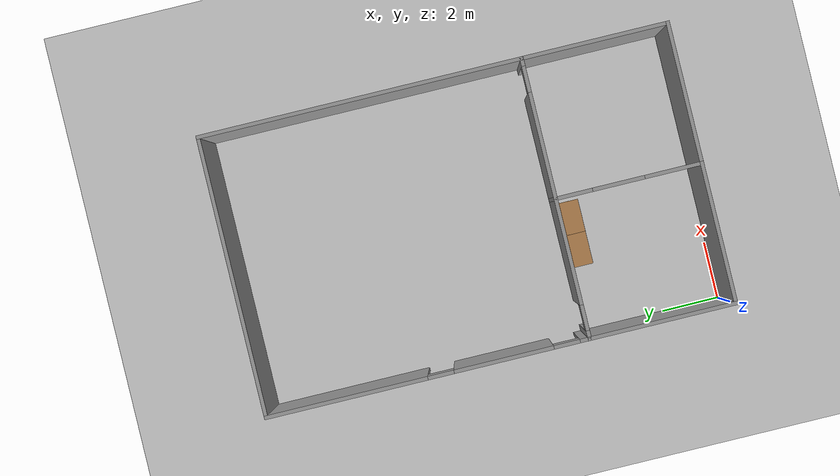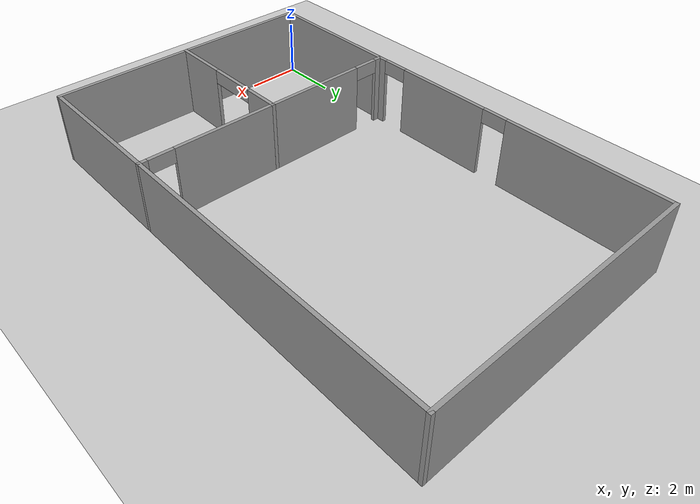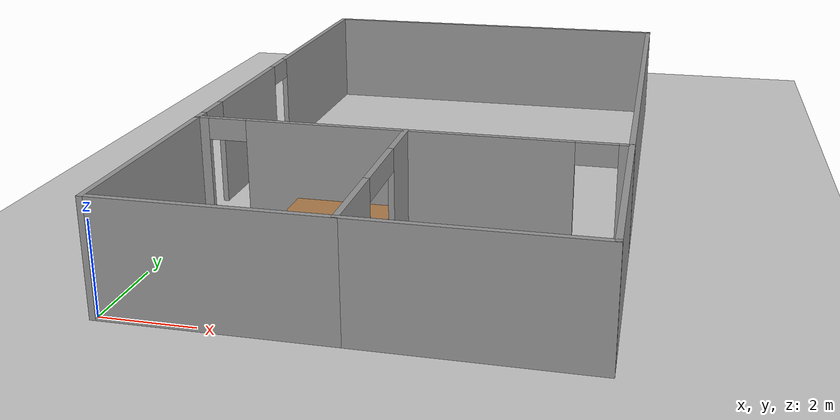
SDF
<sdf version="1.7">
 <world name="default">
  <model name="ground_plane">
   <static>1</static>
   <link name="link">
    <collision name="collision">
     <geometry><plane><normal>0 0 1</normal><size>100 100</size></plane></geometry>
     <surface>
      <contact><collide_bitmask>65535</collide_bitmask></contact>
      <friction><ode><mu>100</mu><mu2>50</mu2></ode></friction>
     </surface>
    </collision>
    <visual name="visual">
     <cast_shadows>0</cast_shadows>
     <geometry><plane><normal>0 0 1</normal><size>100 100</size></plane></geometry>
     <material>
      <script><uri>file://media/materials/scripts/gazebo.material</uri><name>Gazebo/Grey</name></script>
     </material>
    </visual>
   </link>
  </model>
  <model name="table_mod_clone_0_clone">
   <link name="link">
    <inertial>
     <mass>1</mass>
     <inertia><ixx>1</ixx><ixy>0</ixy><ixz>0</ixz><iyy>1</iyy><iyz>0</iyz><izz>1</izz></inertia>
    </inertial>
    <visual name="visual1">
     <pose>0 0 0.87 0 -0 0</pose>
     <geometry><box><size>1.15 0.8 0.03</size></box></geometry>
     <material>
      <script><uri>file://media/materials/scripts/gazebo.material</uri><name>Gazebo/Wood</name></script>
      <shader type="pixel"><normal_map>__default__</normal_map></shader>
      <ambient>1 1 1 1</ambient>
      <diffuse>1 1 1 1</diffuse>
      <specular>0.2 0.2 0.2 1</specular>
      <emissive>0 0 0 1</emissive>
     </material>
    </visual>
    <visual name="back_right_leg">
     <pose>-0.55 -0.38 0.5 0 -0 0</pose>
     <geometry><cylinder><radius>0.02</radius><length>0.75</length></cylinder></geometry>
     <material>
      <script><uri>file://media/materials/scripts/gazebo.material</uri><name>Gazebo/Grey</name></script>
      <shader type="pixel"><normal_map>__default__</normal_map></shader>
      <ambient>0.3 0.3 0.3 1</ambient>
      <diffuse>0.7 0.7 0.7 1</diffuse>
      <specular>0.01 0.01 0.01 1</specular>
      <emissive>0 0 0 1</emissive>
     </material>
    </visual>
    <visual name="front_right_leg">
     <pose>0.55 -0.38 0.5 0 -0 0</pose>
     <geometry><cylinder><radius>0.02</radius><length>0.75</length></cylinder></geometry>
     <material>
      <script><uri>file://media/materials/scripts/gazebo.material</uri><name>Gazebo/Grey</name></script>
      <shader type="pixel"><normal_map>__default__</normal_map></shader>
      <ambient>0.3 0.3 0.3 1</ambient>
      <diffuse>0.7 0.7 0.7 1</diffuse>
      <specular>0.01 0.01 0.01 1</specular>
      <emissive>0 0 0 1</emissive>
     </material>
    </visual>
    <visual name="back_left_leg">
     <pose>-0.55 0.38 0.5 0 -0 0</pose>
     <geometry><cylinder><radius>0.02</radius><length>0.75</length></cylinder></geometry>
     <material>
      <script><uri>file://media/materials/scripts/gazebo.material</uri><name>Gazebo/Grey</name></script>
      <shader type="pixel"><normal_map>__default__</normal_map></shader>
      <ambient>0.3 0.3 0.3 1</ambient>
      <diffuse>0.7 0.7 0.7 1</diffuse>
      <specular>0.01 0.01 0.01 1</specular>
      <emissive>0 0 0 1</emissive>
     </material>
    </visual>
    <visual name="front_left_leg">
     <pose>0.55 0.38 0.5 0 -0 0</pose>
     <geometry><cylinder><radius>0.02</radius><length>0.75</length></cylinder></geometry>
     <material>
      <script><uri>file://media/materials/scripts/gazebo.material</uri><name>Gazebo/Grey</name></script>
      <shader type="pixel"><normal_map>__default__</normal_map></shader>
      <ambient>0.3 0.3 0.3 1</ambient>
      <diffuse>0.7 0.7 0.7 1</diffuse>
      <specular>0.01 0.01 0.01 1</specular>
      <emissive>0 0 0 1</emissive>
     </material>
    </visual>
    <collision name="surface">
     <pose>0 0 0.87 0 -0 0</pose>
     <geometry><box><size>1.15 0.8 0.03</size></box></geometry>
     <surface>
      <friction>
       <ode><mu>0.6</mu><mu2>0.6</mu2><fdir1>0 0 0</fdir1><slip1>0</slip1><slip2>0</slip2></ode>
       <torsional>
        <coefficient>1</coefficient>
        <patch_radius>0</patch_radius>
        <surface_radius>0</surface_radius>
        <use_patch_radius>1</use_patch_radius>
        <ode><slip>0</slip></ode>
       </torsional>
      </friction>
      <bounce><restitution_coefficient>0</restitution_coefficient><threshold>1e+06</threshold></bounce>
      <contact>
       <collide_without_contact>0</collide_without_contact>
       <collide_without_contact_bitmask>1</collide_without_contact_bitmask>
       <collide_bitmask>1</collide_bitmask>
       <ode>
        <soft_cfm>0</soft_cfm>
        <soft_erp>0.2</soft_erp>
        <kp>1e+13</kp>
        <kd>1</kd>
        <max_vel>0.01</max_vel>
        <min_depth>0</min_depth>
       </ode>
       <bullet>
        <split_impulse>1</split_impulse>
        <split_impulse_penetration_threshold>-0.01</split_impulse_penetration_threshold>
        <soft_cfm>0</soft_cfm>
        <soft_erp>0.2</soft_erp>
        <kp>1e+13</kp>
        <kd>1</kd>
       </bullet>
      </contact>
     </surface>
    </collision>
    <collision name="back_right_leg">
     <pose>-0.55 -0.38 0.5 0 -0 0</pose>
     <geometry><cylinder><radius>0.02</radius><length>0.75</length></cylinder></geometry>
     <surface>
      <friction>
       <ode><mu>1</mu><mu2>1</mu2><fdir1>0 0 0</fdir1><slip1>0</slip1><slip2>0</slip2></ode>
       <torsional>
        <coefficient>1</coefficient>
        <patch_radius>0</patch_radius>
        <surface_radius>0</surface_radius>
        <use_patch_radius>1</use_patch_radius>
        <ode><slip>0</slip></ode>
       </torsional>
      </friction>
      <bounce><restitution_coefficient>0</restitution_coefficient><threshold>1e+06</threshold></bounce>
      <contact>
       <collide_without_contact>0</collide_without_contact>
       <collide_without_contact_bitmask>1</collide_without_contact_bitmask>
       <collide_bitmask>1</collide_bitmask>
       <ode>
        <soft_cfm>0</soft_cfm>
        <soft_erp>0.2</soft_erp>
        <kp>1e+13</kp>
        <kd>1</kd>
        <max_vel>0.01</max_vel>
        <min_depth>0</min_depth>
       </ode>
       <bullet>
        <split_impulse>1</split_impulse>
        <split_impulse_penetration_threshold>-0.01</split_impulse_penetration_threshold>
        <soft_cfm>0</soft_cfm>
        <soft_erp>0.2</soft_erp>
        <kp>1e+13</kp>
        <kd>1</kd>
       </bullet>
      </contact>
     </surface>
    </collision>
    <collision name="back_left_leg">
     <pose>-0.55 0.38 0.5 0 -0 0</pose>
     <geometry><cylinder><radius>0.02</radius><length>0.75</length></cylinder></geometry>
     <surface>
      <friction>
       <ode><mu>1</mu><mu2>1</mu2><fdir1>0 0 0</fdir1><slip1>0</slip1><slip2>0</slip2></ode>
       <torsional>
        <coefficient>1</coefficient>
        <patch_radius>0</patch_radius>
        <surface_radius>0</surface_radius>
        <use_patch_radius>1</use_patch_radius>
        <ode><slip>0</slip></ode>
       </torsional>
      </friction>
      <bounce><restitution_coefficient>0</restitution_coefficient><threshold>1e+06</threshold></bounce>
      <contact>
       <collide_without_contact>0</collide_without_contact>
       <collide_without_contact_bitmask>1</collide_without_contact_bitmask>
       <collide_bitmask>1</collide_bitmask>
       <ode>
        <soft_cfm>0</soft_cfm>
        <soft_erp>0.2</soft_erp>
        <kp>1e+13</kp>
        <kd>1</kd>
        <max_vel>0.01</max_vel>
        <min_depth>0</min_depth>
       </ode>
       <bullet>
        <split_impulse>1</split_impulse>
        <split_impulse_penetration_threshold>-0.01</split_impulse_penetration_threshold>
        <soft_cfm>0</soft_cfm>
        <soft_erp>0.2</soft_erp>
        <kp>1e+13</kp>
        <kd>1</kd>
       </bullet>
      </contact>
     </surface>
    </collision>
    <collision name="front_left_leg">
     <pose>0.55 0.38 0.5 0 -0 0</pose>
     <geometry><cylinder><radius>0.02</radius><length>0.75</length></cylinder></geometry>
     <surface>
      <friction>
       <ode><mu>1</mu><mu2>1</mu2><fdir1>0 0 0</fdir1><slip1>0</slip1><slip2>0</slip2></ode>
       <torsional>
        <coefficient>1</coefficient>
        <patch_radius>0</patch_radius>
        <surface_radius>0</surface_radius>
        <use_patch_radius>1</use_patch_radius>
        <ode><slip>0</slip></ode>
       </torsional>
      </friction>
      <bounce><restitution_coefficient>0</restitution_coefficient><threshold>1e+06</threshold></bounce>
      <contact>
       <collide_without_contact>0</collide_without_contact>
       <collide_without_contact_bitmask>1</collide_without_contact_bitmask>
       <collide_bitmask>1</collide_bitmask>
       <ode>
        <soft_cfm>0</soft_cfm>
        <soft_erp>0.2</soft_erp>
        <kp>1e+13</kp>
        <kd>1</kd>
        <max_vel>0.01</max_vel>
        <min_depth>0</min_depth>
       </ode>
       <bullet>
        <split_impulse>1</split_impulse>
        <split_impulse_penetration_threshold>-0.01</split_impulse_penetration_threshold>
        <soft_cfm>0</soft_cfm>
        <soft_erp>0.2</soft_erp>
        <kp>1e+13</kp>
        <kd>1</kd>
       </bullet>
      </contact>
     </surface>
    </collision>
    <collision name="front_right_leg">
     <pose>0.55 -0.38 0.5 0 -0 0</pose>
     <geometry><cylinder><radius>0.02</radius><length>0.75</length></cylinder></geometry>
     <surface>
      <friction>
       <ode><mu>1</mu><mu2>1</mu2><fdir1>0 0 0</fdir1><slip1>0</slip1><slip2>0</slip2></ode>
       <torsional>
        <coefficient>1</coefficient>
        <patch_radius>0</patch_radius>
        <surface_radius>0</surface_radius>
        <use_patch_radius>1</use_patch_radius>
        <ode><slip>0</slip></ode>
       </torsional>
      </friction>
      <bounce><restitution_coefficient>0</restitution_coefficient><threshold>1e+06</threshold></bounce>
      <contact>
       <collide_without_contact>0</collide_without_contact>
       <collide_without_contact_bitmask>1</collide_without_contact_bitmask>
       <collide_bitmask>1</collide_bitmask>
       <ode>
        <soft_cfm>0</soft_cfm>
        <soft_erp>0.2</soft_erp>
        <kp>1e+13</kp>
        <kd>1</kd>
        <max_vel>0.01</max_vel>
        <min_depth>0</min_depth>
       </ode>
       <bullet>
        <split_impulse>1</split_impulse>
        <split_impulse_penetration_threshold>-0.01</split_impulse_penetration_threshold>
        <soft_cfm>0</soft_cfm>
        <soft_erp>0.2</soft_erp>
        <kp>1e+13</kp>
        <kd>1</kd>
       </bullet>
      </contact>
     </surface>
    </collision>
   </link>
   <static>1</static>
   <pose>2.86118 4.46763 -0.134214 0 0 -4e-06</pose>
  </model>
  <model name="table_mod_clone_0_clone_0">
   <link name="link">
    <inertial>
     <mass>1</mass>
     <inertia><ixx>1</ixx><ixy>0</ixy><ixz>0</ixz><iyy>1</iyy><iyz>0</iyz><izz>1</izz></inertia>
    </inertial>
    <visual name="visual1">
     <pose>0 0 0.87 0 -0 0</pose>
     <geometry><box><size>1.15 0.8 0.03</size></box></geometry>
     <material>
      <script><uri>file://media/materials/scripts/gazebo.material</uri><name>Gazebo/Wood</name></script>
      <shader type="pixel"><normal_map>__default__</normal_map></shader>
      <ambient>1 1 1 1</ambient>
      <diffuse>1 1 1 1</diffuse>
      <specular>0.2 0.2 0.2 1</specular>
      <emissive>0 0 0 1</emissive>
     </material>
    </visual>
    <visual name="back_right_leg">
     <pose>-0.55 -0.38 0.5 0 -0 0</pose>
     <geometry><cylinder><radius>0.02</radius><length>0.75</length></cylinder></geometry>
     <material>
      <script><uri>file://media/materials/scripts/gazebo.material</uri><name>Gazebo/Grey</name></script>
      <shader type="pixel"><normal_map>__default__</normal_map></shader>
      <ambient>0.3 0.3 0.3 1</ambient>
      <diffuse>0.7 0.7 0.7 1</diffuse>
      <specular>0.01 0.01 0.01 1</specular>
      <emissive>0 0 0 1</emissive>
     </material>
    </visual>
    <visual name="front_right_leg">
     <pose>0.55 -0.38 0.5 0 -0 0</pose>
     <geometry><cylinder><radius>0.02</radius><length>0.75</length></cylinder></geometry>
     <material>
      <script><uri>file://media/materials/scripts/gazebo.material</uri><name>Gazebo/Grey</name></script>
      <shader type="pixel"><normal_map>__default__</normal_map></shader>
      <ambient>0.3 0.3 0.3 1</ambient>
      <diffuse>0.7 0.7 0.7 1</diffuse>
      <specular>0.01 0.01 0.01 1</specular>
      <emissive>0 0 0 1</emissive>
     </material>
    </visual>
    <visual name="back_left_leg">
     <pose>-0.55 0.38 0.5 0 -0 0</pose>
     <geometry><cylinder><radius>0.02</radius><length>0.75</length></cylinder></geometry>
     <material>
      <script><uri>file://media/materials/scripts/gazebo.material</uri><name>Gazebo/Grey</name></script>
      <shader type="pixel"><normal_map>__default__</normal_map></shader>
      <ambient>0.3 0.3 0.3 1</ambient>
      <diffuse>0.7 0.7 0.7 1</diffuse>
      <specular>0.01 0.01 0.01 1</specular>
      <emissive>0 0 0 1</emissive>
     </material>
    </visual>
    <visual name="front_left_leg">
     <pose>0.55 0.38 0.5 0 -0 0</pose>
     <geometry><cylinder><radius>0.02</radius><length>0.75</length></cylinder></geometry>
     <material>
      <script><uri>file://media/materials/scripts/gazebo.material</uri><name>Gazebo/Grey</name></script>
      <shader type="pixel"><normal_map>__default__</normal_map></shader>
      <ambient>0.3 0.3 0.3 1</ambient>
      <diffuse>0.7 0.7 0.7 1</diffuse>
      <specular>0.01 0.01 0.01 1</specular>
      <emissive>0 0 0 1</emissive>
     </material>
    </visual>
    <collision name="surface">
     <pose>0 0 0.87 0 -0 0</pose>
     <geometry><box><size>1.15 0.8 0.03</size></box></geometry>
     <surface>
      <friction>
       <ode><mu>0.6</mu><mu2>0.6</mu2><fdir1>0 0 0</fdir1><slip1>0</slip1><slip2>0</slip2></ode>
       <torsional>
        <coefficient>1</coefficient>
        <patch_radius>0</patch_radius>
        <surface_radius>0</surface_radius>
        <use_patch_radius>1</use_patch_radius>
        <ode><slip>0</slip></ode>
       </torsional>
      </friction>
      <bounce><restitution_coefficient>0</restitution_coefficient><threshold>1e+06</threshold></bounce>
      <contact>
       <collide_without_contact>0</collide_without_contact>
       <collide_without_contact_bitmask>1</collide_without_contact_bitmask>
       <collide_bitmask>1</collide_bitmask>
       <ode>
        <soft_cfm>0</soft_cfm>
        <soft_erp>0.2</soft_erp>
        <kp>1e+13</kp>
        <kd>1</kd>
        <max_vel>0.01</max_vel>
        <min_depth>0</min_depth>
       </ode>
       <bullet>
        <split_impulse>1</split_impulse>
        <split_impulse_penetration_threshold>-0.01</split_impulse_penetration_threshold>
        <soft_cfm>0</soft_cfm>
        <soft_erp>0.2</soft_erp>
        <kp>1e+13</kp>
        <kd>1</kd>
       </bullet>
      </contact>
     </surface>
    </collision>
    <collision name="back_right_leg">
     <pose>-0.55 -0.38 0.5 0 -0 0</pose>
     <geometry><cylinder><radius>0.02</radius><length>0.75</length></cylinder></geometry>
     <surface>
      <friction>
       <ode><mu>1</mu><mu2>1</mu2><fdir1>0 0 0</fdir1><slip1>0</slip1><slip2>0</slip2></ode>
       <torsional>
        <coefficient>1</coefficient>
        <patch_radius>0</patch_radius>
        <surface_radius>0</surface_radius>
        <use_patch_radius>1</use_patch_radius>
        <ode><slip>0</slip></ode>
       </torsional>
      </friction>
      <bounce><restitution_coefficient>0</restitution_coefficient><threshold>1e+06</threshold></bounce>
      <contact>
       <collide_without_contact>0</collide_without_contact>
       <collide_without_contact_bitmask>1</collide_without_contact_bitmask>
       <collide_bitmask>1</collide_bitmask>
       <ode>
        <soft_cfm>0</soft_cfm>
        <soft_erp>0.2</soft_erp>
        <kp>1e+13</kp>
        <kd>1</kd>
        <max_vel>0.01</max_vel>
        <min_depth>0</min_depth>
       </ode>
       <bullet>
        <split_impulse>1</split_impulse>
        <split_impulse_penetration_threshold>-0.01</split_impulse_penetration_threshold>
        <soft_cfm>0</soft_cfm>
        <soft_erp>0.2</soft_erp>
        <kp>1e+13</kp>
        <kd>1</kd>
       </bullet>
      </contact>
     </surface>
    </collision>
    <collision name="back_left_leg">
     <pose>-0.55 0.38 0.5 0 -0 0</pose>
     <geometry><cylinder><radius>0.02</radius><length>0.75</length></cylinder></geometry>
     <surface>
      <friction>
       <ode><mu>1</mu><mu2>1</mu2><fdir1>0 0 0</fdir1><slip1>0</slip1><slip2>0</slip2></ode>
       <torsional>
        <coefficient>1</coefficient>
        <patch_radius>0</patch_radius>
        <surface_radius>0</surface_radius>
        <use_patch_radius>1</use_patch_radius>
        <ode><slip>0</slip></ode>
       </torsional>
      </friction>
      <bounce><restitution_coefficient>0</restitution_coefficient><threshold>1e+06</threshold></bounce>
      <contact>
       <collide_without_contact>0</collide_without_contact>
       <collide_without_contact_bitmask>1</collide_without_contact_bitmask>
       <collide_bitmask>1</collide_bitmask>
       <ode>
        <soft_cfm>0</soft_cfm>
        <soft_erp>0.2</soft_erp>
        <kp>1e+13</kp>
        <kd>1</kd>
        <max_vel>0.01</max_vel>
        <min_depth>0</min_depth>
       </ode>
       <bullet>
        <split_impulse>1</split_impulse>
        <split_impulse_penetration_threshold>-0.01</split_impulse_penetration_threshold>
        <soft_cfm>0</soft_cfm>
        <soft_erp>0.2</soft_erp>
        <kp>1e+13</kp>
        <kd>1</kd>
       </bullet>
      </contact>
     </surface>
    </collision>
    <collision name="front_left_leg">
     <pose>0.55 0.38 0.5 0 -0 0</pose>
     <geometry><cylinder><radius>0.02</radius><length>0.75</length></cylinder></geometry>
     <surface>
      <friction>
       <ode><mu>1</mu><mu2>1</mu2><fdir1>0 0 0</fdir1><slip1>0</slip1><slip2>0</slip2></ode>
       <torsional>
        <coefficient>1</coefficient>
        <patch_radius>0</patch_radius>
        <surface_radius>0</surface_radius>
        <use_patch_radius>1</use_patch_radius>
        <ode><slip>0</slip></ode>
       </torsional>
      </friction>
      <bounce><restitution_coefficient>0</restitution_coefficient><threshold>1e+06</threshold></bounce>
      <contact>
       <collide_without_contact>0</collide_without_contact>
       <collide_without_contact_bitmask>1</collide_without_contact_bitmask>
       <collide_bitmask>1</collide_bitmask>
       <ode>
        <soft_cfm>0</soft_cfm>
        <soft_erp>0.2</soft_erp>
        <kp>1e+13</kp>
        <kd>1</kd>
        <max_vel>0.01</max_vel>
        <min_depth>0</min_depth>
       </ode>
       <bullet>
        <split_impulse>1</split_impulse>
        <split_impulse_penetration_threshold>-0.01</split_impulse_penetration_threshold>
        <soft_cfm>0</soft_cfm>
        <soft_erp>0.2</soft_erp>
        <kp>1e+13</kp>
        <kd>1</kd>
       </bullet>
      </contact>
     </surface>
    </collision>
    <collision name="front_right_leg">
     <pose>0.55 -0.38 0.5 0 -0 0</pose>
     <geometry><cylinder><radius>0.02</radius><length>0.75</length></cylinder></geometry>
     <surface>
      <friction>
       <ode><mu>1</mu><mu2>1</mu2><fdir1>0 0 0</fdir1><slip1>0</slip1><slip2>0</slip2></ode>
       <torsional>
        <coefficient>1</coefficient>
        <patch_radius>0</patch_radius>
        <surface_radius>0</surface_radius>
        <use_patch_radius>1</use_patch_radius>
        <ode><slip>0</slip></ode>
       </torsional>
      </friction>
      <bounce><restitution_coefficient>0</restitution_coefficient><threshold>1e+06</threshold></bounce>
      <contact>
       <collide_without_contact>0</collide_without_contact>
       <collide_without_contact_bitmask>1</collide_without_contact_bitmask>
       <collide_bitmask>1</collide_bitmask>
       <ode>
        <soft_cfm>0</soft_cfm>
        <soft_erp>0.2</soft_erp>
        <kp>1e+13</kp>
        <kd>1</kd>
        <max_vel>0.01</max_vel>
        <min_depth>0</min_depth>
       </ode>
       <bullet>
        <split_impulse>1</split_impulse>
        <split_impulse_penetration_threshold>-0.01</split_impulse_penetration_threshold>
        <soft_cfm>0</soft_cfm>
        <soft_erp>0.2</soft_erp>
        <kp>1e+13</kp>
        <kd>1</kd>
       </bullet>
      </contact>
     </surface>
    </collision>
   </link>
   <static>1</static>
   <pose>4.01232 4.46455 -0.134214 0 0 -4e-06</pose>
  </model>
  <model name="walls_mod">
   <pose>4.77963 7.98912 0 0 -0 1.5708</pose>
   <link name="Wall_29">
    <pose>2.515 4.81752 0 0 -0 0</pose>
    <visual name="Wall_29_Visual_0">
     <pose>-5.43162 0 1.25 0 -0 0</pose>
     <geometry><box><size>0.396755 0.13 2.5</size></box></geometry>
     <material>
      <script><uri>file://media/materials/scripts/gazebo.material</uri><name>Gazebo/Grey</name></script>
      <ambient>1 1 1 1</ambient>
     </material>
     <meta><layer>0</layer></meta>
    </visual>
    <collision name="Wall_29_Collision_0">
     <geometry><box><size>0.396755 0.13 2.5</size></box></geometry>
     <pose>-5.43162 0 1.25 0 -0 0</pose>
    </collision>
    <visual name="Wall_29_Visual_1">
     <pose>-2.61601 0 1.25 0 -0 0</pose>
     <geometry><box><size>3.43447 0.13 2.5</size></box></geometry>
     <material>
      <script><uri>file://media/materials/scripts/gazebo.material</uri><name>Gazebo/Grey</name></script>
      <ambient>1 1 1 1</ambient>
     </material>
     <meta><layer>0</layer></meta>
    </visual>
    <collision name="Wall_29_Collision_1">
     <geometry><box><size>3.43447 0.13 2.5</size></box></geometry>
     <pose>-2.61601 0 1.25 0 -0 0</pose>
    </collision>
    <visual name="Wall_29_Visual_2">
     <pose>2.81561 0 1.25 0 -0 0</pose>
     <geometry><box><size>5.62878 0.13 2.5</size></box></geometry>
     <material>
      <script><uri>file://media/materials/scripts/gazebo.material</uri><name>Gazebo/Grey</name></script>
      <ambient>1 1 1 1</ambient>
     </material>
     <meta><layer>0</layer></meta>
    </visual>
    <collision name="Wall_29_Collision_2">
     <geometry><box><size>5.62878 0.13 2.5</size></box></geometry>
     <pose>2.81561 0 1.25 0 -0 0</pose>
    </collision>
    <visual name="Wall_29_Visual_3">
     <pose>-4.78324 0 2.25 0 -0 0</pose>
     <geometry><box><size>0.9 0.13 0.5</size></box></geometry>
     <material>
      <script><uri>file://media/materials/scripts/gazebo.material</uri><name>Gazebo/Grey</name></script>
      <ambient>1 1 1 1</ambient>
     </material>
     <meta><layer>0</layer></meta>
    </visual>
    <collision name="Wall_29_Collision_3">
     <geometry><box><size>0.9 0.13 0.5</size></box></geometry>
     <pose>-4.78324 0 2.25 0 -0 0</pose>
    </collision>
    <visual name="Wall_29_Visual_4">
     <pose>-0.448777 0 2.25 0 -0 0</pose>
     <geometry><box><size>0.9 0.13 0.5</size></box></geometry>
     <material>
      <script><uri>file://media/materials/scripts/gazebo.material</uri><name>Gazebo/Grey</name></script>
      <ambient>1 1 1 1</ambient>
     </material>
     <meta><layer>0</layer></meta>
    </visual>
    <collision name="Wall_29_Collision_4">
     <geometry><box><size>0.9 0.13 0.5</size></box></geometry>
     <pose>-0.448777 0 2.25 0 -0 0</pose>
    </collision>
   </link>
   <link name="Wall_31">
    <pose>-3.05008 -0.007519 0 0 -0 -1.5708</pose>
    <visual name="Wall_31_Visual_0">
     <pose>-4.70965 0 1.25 0 -0 0</pose>
     <geometry><box><size>0.330701 0.13 2.5</size></box></geometry>
     <material>
      <script><uri>file://media/materials/scripts/gazebo.material</uri><name>Gazebo/Grey</name></script>
      <ambient>1 1 1 1</ambient>
     </material>
     <meta><layer>0</layer></meta>
    </visual>
    <collision name="Wall_31_Collision_0">
     <geometry><box><size>0.330701 0.13 2.5</size></box></geometry>
     <pose>-4.70965 0 1.25 0 -0 0</pose>
    </collision>
    <visual name="Wall_31_Visual_1">
     <pose>-0.009962 0 1.25 0 -0 0</pose>
     <geometry><box><size>7.30868 0.13 2.5</size></box></geometry>
     <material>
      <script><uri>file://media/materials/scripts/gazebo.material</uri><name>Gazebo/Grey</name></script>
      <ambient>1 1 1 1</ambient>
     </material>
     <meta><layer>0</layer></meta>
    </visual>
    <collision name="Wall_31_Collision_1">
     <geometry><box><size>7.30868 0.13 2.5</size></box></geometry>
     <pose>-0.009962 0 1.25 0 -0 0</pose>
    </collision>
    <visual name="Wall_31_Visual_2">
     <pose>4.70969 0 1.25 0 -0 0</pose>
     <geometry><box><size>0.330624 0.13 2.5</size></box></geometry>
     <material>
      <script><uri>file://media/materials/scripts/gazebo.material</uri><name>Gazebo/Grey</name></script>
      <ambient>1 1 1 1</ambient>
     </material>
     <meta><layer>0</layer></meta>
    </visual>
    <collision name="Wall_31_Collision_2">
     <geometry><box><size>0.330624 0.13 2.5</size></box></geometry>
     <pose>4.70969 0 1.25 0 -0 0</pose>
    </collision>
    <visual name="Wall_31_Visual_3">
     <pose>-4.1043 0 2.25 0 -0 0</pose>
     <geometry><box><size>0.88 0.13 0.5</size></box></geometry>
     <material>
      <script><uri>file://media/materials/scripts/gazebo.material</uri><name>Gazebo/Grey</name></script>
      <ambient>1 1 1 1</ambient>
     </material>
     <meta><layer>0</layer></meta>
    </visual>
    <collision name="Wall_31_Collision_3">
     <geometry><box><size>0.88 0.13 0.5</size></box></geometry>
     <pose>-4.1043 0 2.25 0 -0 0</pose>
    </collision>
    <visual name="Wall_31_Visual_4">
     <pose>4.09438 0 2.25 0 -0 0</pose>
     <geometry><box><size>0.9 0.13 0.5</size></box></geometry>
     <material>
      <script><uri>file://media/materials/scripts/gazebo.material</uri><name>Gazebo/Grey</name></script>
      <ambient>1 1 1 1</ambient>
     </material>
     <meta><layer>0</layer></meta>
    </visual>
    <collision name="Wall_31_Collision_4">
     <geometry><box><size>0.9 0.13 0.5</size></box></geometry>
     <pose>4.09438 0 2.25 0 -0 0</pose>
    </collision>
   </link>
   <link name="Wall_33">
    <collision name="Wall_33_Collision">
     <geometry><box><size>11.26 0.13 2.5</size></box></geometry>
     <pose>0 0 1.25 0 -0 0</pose>
    </collision>
    <visual name="Wall_33_Visual">
     <pose>0 0 1.25 0 -0 0</pose>
     <geometry><box><size>11.26 0.13 2.5</size></box></geometry>
     <material>
      <script><uri>file://media/materials/scripts/gazebo.material</uri><name>Gazebo/Grey</name></script>
      <ambient>1 1 1 1</ambient>
     </material>
     <meta><layer>0</layer></meta>
    </visual>
    <pose>2.515 -4.81748 0 0 -0 0</pose>
   </link>
   <link name="Wall_35">
    <collision name="Wall_35_Collision">
     <geometry><box><size>9.765 0.13 2.5</size></box></geometry>
     <pose>0 0 1.25 0 -0 0</pose>
    </collision>
    <visual name="Wall_35_Visual">
     <pose>0 0 1.25 0 -0 0</pose>
     <geometry><box><size>9.765 0.13 2.5</size></box></geometry>
     <material>
      <script><uri>file://media/materials/scripts/gazebo.material</uri><name>Gazebo/Grey</name></script>
      <ambient>1 1 1 1</ambient>
     </material>
     <meta><layer>0</layer></meta>
    </visual>
    <pose>8.08 1.9e-05 0 0 -0 -1.5708</pose>
   </link>
   <link name="Wall_37">
    <collision name="Wall_37_Collision">
     <geometry><box><size>5.16 0.13 2.5</size></box></geometry>
     <pose>0 0 1.25 0 -0 0</pose>
    </collision>
    <visual name="Wall_37_Visual">
     <pose>0 0 1.25 0 -0 0</pose>
     <geometry><box><size>5.16 0.13 2.5</size></box></geometry>
     <material>
      <script><uri>file://media/materials/scripts/gazebo.material</uri><name>Gazebo/Grey</name></script>
      <ambient>1 1 1 1</ambient>
     </material>
     <meta><layer>0</layer></meta>
    </visual>
    <pose>-5.565 4.81752 0 0 -0 3.14159</pose>
   </link>
   <link name="Wall_39">
    <collision name="Wall_39_Collision">
     <geometry><box><size>4.94 0.13 2.5</size></box></geometry>
     <pose>0 0 1.25 0 -0 0</pose>
    </collision>
    <visual name="Wall_39_Visual">
     <pose>0 0 1.25 0 -0 0</pose>
     <geometry><box><size>4.94 0.13 2.5</size></box></geometry>
     <material>
      <script><uri>file://media/materials/scripts/gazebo.material</uri><name>Gazebo/Grey</name></script>
      <ambient>1 1 1 1</ambient>
     </material>
     <meta><layer>0</layer></meta>
    </visual>
    <pose>-8.08 2.41252 0 0 -0 -1.5708</pose>
   </link>
   <link name="Wall_41">
    <collision name="Wall_41_Collision">
     <geometry><box><size>4.955 0.13 2.5</size></box></geometry>
     <pose>0 0 1.25 0 -0 0</pose>
    </collision>
    <visual name="Wall_41_Visual">
     <pose>0 0 1.25 0 -0 0</pose>
     <geometry><box><size>4.955 0.13 2.5</size></box></geometry>
     <material>
      <script><uri>file://media/materials/scripts/gazebo.material</uri><name>Gazebo/Grey</name></script>
      <ambient>1 1 1 1</ambient>
     </material>
     <meta><layer>0</layer></meta>
    </visual>
    <pose>-8.08 -2.40498 0 0 -0 -1.5708</pose>
   </link>
   <link name="Wall_43">
    <pose>-5.565 0.007519 0 0 -0 0</pose>
    <visual name="Wall_43_Visual_0">
     <pose>-1.56545 0 1.25 0 -0 0</pose>
     <geometry><box><size>2.0291 0.13 2.5</size></box></geometry>
     <material>
      <script><uri>file://media/materials/scripts/gazebo.material</uri><name>Gazebo/Grey</name></script>
      <ambient>1 1 1 1</ambient>
     </material>
     <meta><layer>0</layer></meta>
    </visual>
    <collision name="Wall_43_Collision_0">
     <geometry><box><size>2.0291 0.13 2.5</size></box></geometry>
     <pose>-1.56545 0 1.25 0 -0 0</pose>
    </collision>
    <visual name="Wall_43_Visual_1">
     <pose>1.91455 0 1.25 0 -0 0</pose>
     <geometry><box><size>1.3309 0.13 2.5</size></box></geometry>
     <material>
      <script><uri>file://media/materials/scripts/gazebo.material</uri><name>Gazebo/Grey</name></script>
      <ambient>1 1 1 1</ambient>
     </material>
     <meta><layer>0</layer></meta>
    </visual>
    <collision name="Wall_43_Collision_1">
     <geometry><box><size>1.3309 0.13 2.5</size></box></geometry>
     <pose>1.91455 0 1.25 0 -0 0</pose>
    </collision>
    <visual name="Wall_43_Visual_2">
     <pose>0.349103 0 2.25 0 -0 0</pose>
     <geometry><box><size>1.8 0.13 0.5</size></box></geometry>
     <material>
      <script><uri>file://media/materials/scripts/gazebo.material</uri><name>Gazebo/Grey</name></script>
      <ambient>1 1 1 1</ambient>
     </material>
     <meta><layer>0</layer></meta>
    </visual>
    <collision name="Wall_43_Collision_2">
     <geometry><box><size>1.8 0.13 0.5</size></box></geometry>
     <pose>0.349103 0 2.25 0 -0 0</pose>
    </collision>
   </link>
   <link name="Wall_45">
    <collision name="Wall_45_Collision">
     <geometry><box><size>5.16 0.13 2.5</size></box></geometry>
     <pose>0 0 1.25 0 -0 0</pose>
    </collision>
    <visual name="Wall_45_Visual">
     <pose>0 0 1.25 0 -0 0</pose>
     <geometry><box><size>5.16 0.13 2.5</size></box></geometry>
     <material>
      <script><uri>file://media/materials/scripts/gazebo.material</uri><name>Gazebo/Grey</name></script>
      <ambient>1 1 1 1</ambient>
     </material>
     <meta><layer>0</layer></meta>
    </visual>
    <pose>-5.565 -4.81748 0 0 -0 0</pose>
   </link>
   <static>1</static>
  </model>
 </world>
</sdf>
